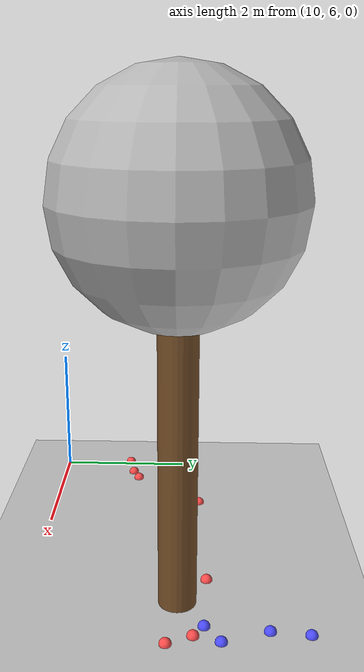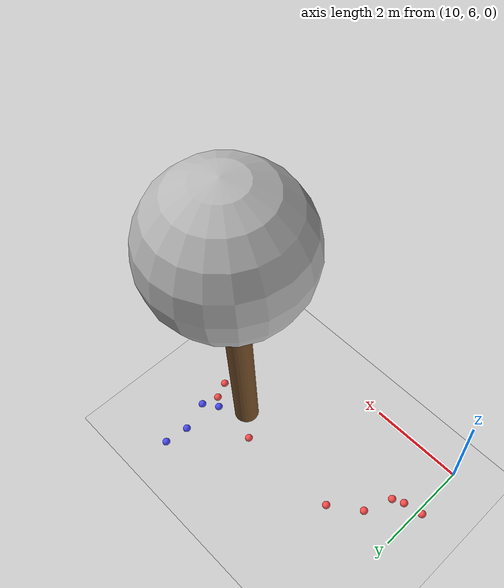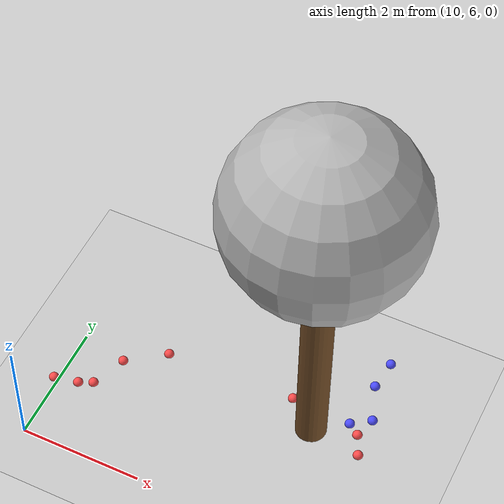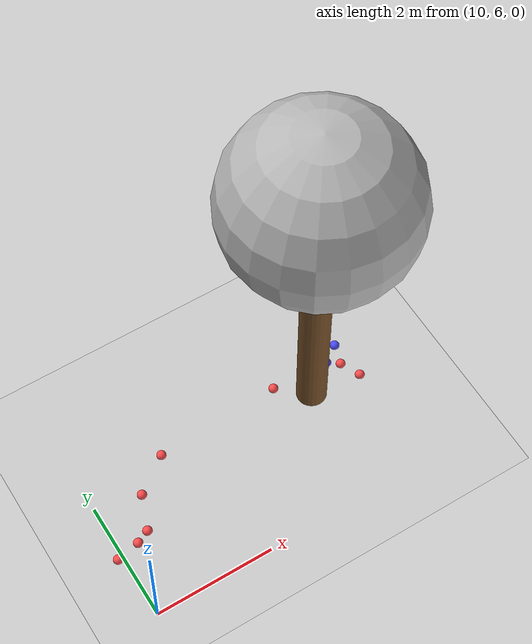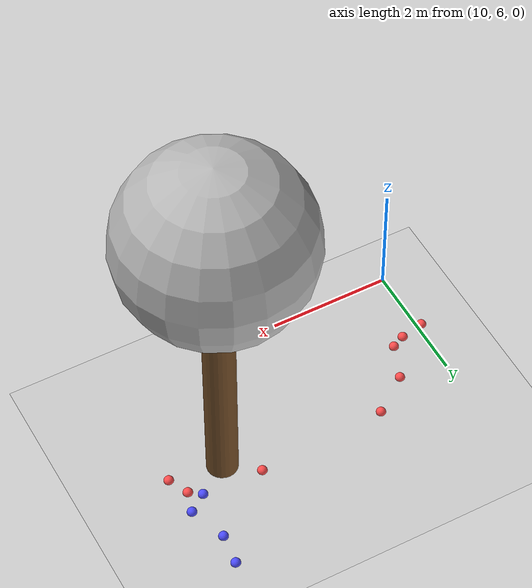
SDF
<sdf version="1.7">
 <world name="default">
  <model name="ground_plane">
   <static>1</static>
   <link name="link">
    <collision name="collision">
     <geometry><plane><normal>0 0 1</normal><size>100 100</size></plane></geometry>
     <surface>
      <contact><collide_bitmask>65535</collide_bitmask></contact>
      <friction><ode><mu>100</mu><mu2>50</mu2></ode></friction>
     </surface>
    </collision>
    <visual name="visual">
     <cast_shadows>0</cast_shadows>
     <geometry><plane><normal>0 0 1</normal><size>100 100</size></plane></geometry>
     <material>
      <script><uri>file://media/materials/scripts/gazebo.material</uri><name>Gazebo/Grey</name></script>
     </material>
    </visual>
   </link>
  </model>
  <model name="tree_simple_74">
   <static>1</static>
   <link name="link">
    <pose>0 0 0.1 0 -0 0</pose>
    <inertial>
     <mass>666</mass>
     <inertia>
      <ixx>0.0861167</ixx>
      <ixy>0</ixy>
      <ixz>0</ixz>
      <iyy>0.0861167</iyy>
      <iyz>0</iyz>
      <izz>0.0861167</izz>
     </inertia>
    </inertial>
    <collision name="collision_trunk">
     <pose>0 0 2 0 -0 0</pose>
     <geometry><cylinder><radius>0.25</radius><length>4</length></cylinder></geometry>
     <surface>
      <contact>
       <poissons_ratio>0.347</poissons_ratio>
       <elastic_modulus>8.8e+09</elastic_modulus>
       <ode><kp>100000</kp><kd>100</kd><max_vel>100</max_vel><min_depth>0.001</min_depth></ode>
      </contact>
      <friction>
       <torsional>
        <coefficient>1</coefficient>
        <use_patch_radius>0</use_patch_radius>
        <surface_radius>0.01</surface_radius>
       </torsional>
      </friction>
     </surface>
    </collision>
    <collision name="collision_treetop">
     <pose>0 0 5.2 0 -0 0</pose>
     <geometry><sphere><radius>1.5</radius></sphere></geometry>
     <surface>
      <contact>
       <poissons_ratio>0.347</poissons_ratio>
       <elastic_modulus>8.8e+09</elastic_modulus>
       <ode><kp>100000</kp><kd>100</kd><max_vel>100</max_vel><min_depth>0.001</min_depth></ode>
      </contact>
      <friction>
       <torsional>
        <coefficient>1</coefficient>
        <use_patch_radius>0</use_patch_radius>
        <surface_radius>0.01</surface_radius>
       </torsional>
      </friction>
     </surface>
    </collision>
    <visual name="trunk">
     <pose>0 0 2 0 -0 0</pose>
     <geometry><cylinder><radius>0.25</radius><length>4</length></cylinder></geometry>
     <material>
      <script>
       <uri>model://tree_simple/scripts</uri>
       <uri>model://tree_simple/materials/textures</uri>
       <name>TreeSimple/Trunk</name>
      </script>
     </material>
    </visual>
    <visual name="treetop">
     <pose>0 0 5.2 0 -0 0</pose>
     <geometry><sphere><radius>1.5</radius></sphere></geometry>
     <material>
      <script>
       <uri>model://tree_simple/scripts</uri>
       <uri>model://tree_simple/materials/textures</uri>
       <name>TreeSimple/Treetop</name>
      </script>
     </material>
    </visual>
   </link>
   <pose>14 8 -0.1 0 -0 0</pose>
  </model>
  <model name="seed_blue_149">
   <link name="link">
    <inertial>
     <mass>1</mass>
     <inertia><ixx>0.1</ixx><ixy>0</ixy><ixz>0</ixz><iyy>0.1</iyy><iyz>0</iyz><izz>0.1</izz></inertia>
    </inertial>
    <visual name="visual">
     <geometry><sphere><radius>0.08</radius></sphere></geometry>
     <material>
      <script><name>Gazebo/Grey</name><uri>file://media/materials/scripts/gazebo.material</uri></script>
      <shader type="pixel"><normal_map>__default__</normal_map></shader>
      <ambient>0.3 0.3 1 1</ambient>
      <diffuse>0.7 0.7 0.7 1</diffuse>
      <specular>0.01 0.01 0.01 1</specular>
      <emissive>0 0 0 1</emissive>
     </material>
    </visual>
    <collision name="collision">
     <geometry><sphere><radius>0.0005</radius></sphere></geometry>
     <surface>
      <friction>
       <ode><mu>1</mu><mu2>1</mu2><fdir1>0 0 0</fdir1><slip1>0</slip1><slip2>0</slip2></ode>
       <torsional>
        <coefficient>1</coefficient>
        <patch_radius>0</patch_radius>
        <surface_radius>0</surface_radius>
        <use_patch_radius>1</use_patch_radius>
        <ode><slip>0</slip></ode>
       </torsional>
      </friction>
      <bounce><restitution_coefficient>0</restitution_coefficient><threshold>1e+06</threshold></bounce>
      <contact>
       <collide_without_contact>0</collide_without_contact>
       <collide_without_contact_bitmask>1</collide_without_contact_bitmask>
       <collide_bitmask>1</collide_bitmask>
       <ode>
        <soft_cfm>0</soft_cfm>
        <soft_erp>0.2</soft_erp>
        <kp>1e+13</kp>
        <kd>1</kd>
        <max_vel>0.01</max_vel>
        <min_depth>0</min_depth>
       </ode>
       <bullet>
        <split_impulse>1</split_impulse>
        <split_impulse_penetration_threshold>-0.01</split_impulse_penetration_threshold>
        <soft_cfm>0</soft_cfm>
        <soft_erp>0.2</soft_erp>
        <kp>1e+13</kp>
        <kd>1</kd>
       </bullet>
      </contact>
     </surface>
    </collision>
   </link>
   <static>0</static>
   <pose>14.5107 8.34532 0.0005 0 -0 0</pose>
  </model>
  <model name="seed_blue_150">
   <link name="link">
    <inertial>
     <mass>1</mass>
     <inertia><ixx>0.1</ixx><ixy>0</ixy><ixz>0</ixz><iyy>0.1</iyy><iyz>0</iyz><izz>0.1</izz></inertia>
    </inertial>
    <visual name="visual">
     <geometry><sphere><radius>0.08</radius></sphere></geometry>
     <material>
      <script><name>Gazebo/Grey</name><uri>file://media/materials/scripts/gazebo.material</uri></script>
      <shader type="pixel"><normal_map>__default__</normal_map></shader>
      <ambient>0.3 0.3 1 1</ambient>
      <diffuse>0.7 0.7 0.7 1</diffuse>
      <specular>0.01 0.01 0.01 1</specular>
      <emissive>0 0 0 1</emissive>
     </material>
    </visual>
    <collision name="collision">
     <geometry><sphere><radius>0.0005</radius></sphere></geometry>
     <surface>
      <friction>
       <ode><mu>1</mu><mu2>1</mu2><fdir1>0 0 0</fdir1><slip1>0</slip1><slip2>0</slip2></ode>
       <torsional>
        <coefficient>1</coefficient>
        <patch_radius>0</patch_radius>
        <surface_radius>0</surface_radius>
        <use_patch_radius>1</use_patch_radius>
        <ode><slip>0</slip></ode>
       </torsional>
      </friction>
      <bounce><restitution_coefficient>0</restitution_coefficient><threshold>1e+06</threshold></bounce>
      <contact>
       <collide_without_contact>0</collide_without_contact>
       <collide_without_contact_bitmask>1</collide_without_contact_bitmask>
       <collide_bitmask>1</collide_bitmask>
       <ode>
        <soft_cfm>0</soft_cfm>
        <soft_erp>0.2</soft_erp>
        <kp>1e+13</kp>
        <kd>1</kd>
        <max_vel>0.01</max_vel>
        <min_depth>0</min_depth>
       </ode>
       <bullet>
        <split_impulse>1</split_impulse>
        <split_impulse_penetration_threshold>-0.01</split_impulse_penetration_threshold>
        <soft_cfm>0</soft_cfm>
        <soft_erp>0.2</soft_erp>
        <kp>1e+13</kp>
        <kd>1</kd>
       </bullet>
      </contact>
     </surface>
    </collision>
   </link>
   <static>0</static>
   <pose>14.8072 8.55366 0.0005 0 -0 0</pose>
  </model>
  <model name="seed_blue_151">
   <link name="link">
    <inertial>
     <mass>1</mass>
     <inertia><ixx>0.1</ixx><ixy>0</ixy><ixz>0</ixz><iyy>0.1</iyy><iyz>0</iyz><izz>0.1</izz></inertia>
    </inertial>
    <visual name="visual">
     <geometry><sphere><radius>0.08</radius></sphere></geometry>
     <material>
      <script><name>Gazebo/Grey</name><uri>file://media/materials/scripts/gazebo.material</uri></script>
      <shader type="pixel"><normal_map>__default__</normal_map></shader>
      <ambient>0.3 0.3 1 1</ambient>
      <diffuse>0.7 0.7 0.7 1</diffuse>
      <specular>0.01 0.01 0.01 1</specular>
      <emissive>0 0 0 1</emissive>
     </material>
    </visual>
    <collision name="collision">
     <geometry><sphere><radius>0.0005</radius></sphere></geometry>
     <surface>
      <friction>
       <ode><mu>1</mu><mu2>1</mu2><fdir1>0 0 0</fdir1><slip1>0</slip1><slip2>0</slip2></ode>
       <torsional>
        <coefficient>1</coefficient>
        <patch_radius>0</patch_radius>
        <surface_radius>0</surface_radius>
        <use_patch_radius>1</use_patch_radius>
        <ode><slip>0</slip></ode>
       </torsional>
      </friction>
      <bounce><restitution_coefficient>0</restitution_coefficient><threshold>1e+06</threshold></bounce>
      <contact>
       <collide_without_contact>0</collide_without_contact>
       <collide_without_contact_bitmask>1</collide_without_contact_bitmask>
       <collide_bitmask>1</collide_bitmask>
       <ode>
        <soft_cfm>0</soft_cfm>
        <soft_erp>0.2</soft_erp>
        <kp>1e+13</kp>
        <kd>1</kd>
        <max_vel>0.01</max_vel>
        <min_depth>0</min_depth>
       </ode>
       <bullet>
        <split_impulse>1</split_impulse>
        <split_impulse_penetration_threshold>-0.01</split_impulse_penetration_threshold>
        <soft_cfm>0</soft_cfm>
        <soft_erp>0.2</soft_erp>
        <kp>1e+13</kp>
        <kd>1</kd>
       </bullet>
      </contact>
     </surface>
    </collision>
   </link>
   <static>0</static>
   <pose>14.6504 9.66875 0.0005 0 -0 0</pose>
  </model>
  <model name="seed_blue_152">
   <link name="link">
    <inertial>
     <mass>1</mass>
     <inertia><ixx>0.1</ixx><ixy>0</ixy><ixz>0</ixz><iyy>0.1</iyy><iyz>0</iyz><izz>0.1</izz></inertia>
    </inertial>
    <visual name="visual">
     <geometry><sphere><radius>0.08</radius></sphere></geometry>
     <material>
      <script><name>Gazebo/Grey</name><uri>file://media/materials/scripts/gazebo.material</uri></script>
      <shader type="pixel"><normal_map>__default__</normal_map></shader>
      <ambient>0.3 0.3 1 1</ambient>
      <diffuse>0.7 0.7 0.7 1</diffuse>
      <specular>0.01 0.01 0.01 1</specular>
      <emissive>0 0 0 1</emissive>
     </material>
    </visual>
    <collision name="collision">
     <geometry><sphere><radius>0.0005</radius></sphere></geometry>
     <surface>
      <friction>
       <ode><mu>1</mu><mu2>1</mu2><fdir1>0 0 0</fdir1><slip1>0</slip1><slip2>0</slip2></ode>
       <torsional>
        <coefficient>1</coefficient>
        <patch_radius>0</patch_radius>
        <surface_radius>0</surface_radius>
        <use_patch_radius>1</use_patch_radius>
        <ode><slip>0</slip></ode>
       </torsional>
      </friction>
      <bounce><restitution_coefficient>0</restitution_coefficient><threshold>1e+06</threshold></bounce>
      <contact>
       <collide_without_contact>0</collide_without_contact>
       <collide_without_contact_bitmask>1</collide_without_contact_bitmask>
       <collide_bitmask>1</collide_bitmask>
       <ode>
        <soft_cfm>0</soft_cfm>
        <soft_erp>0.2</soft_erp>
        <kp>1e+13</kp>
        <kd>1</kd>
        <max_vel>0.01</max_vel>
        <min_depth>0</min_depth>
       </ode>
       <bullet>
        <split_impulse>1</split_impulse>
        <split_impulse_penetration_threshold>-0.01</split_impulse_penetration_threshold>
        <soft_cfm>0</soft_cfm>
        <soft_erp>0.2</soft_erp>
        <kp>1e+13</kp>
        <kd>1</kd>
       </bullet>
      </contact>
     </surface>
    </collision>
   </link>
   <static>0</static>
   <pose>14.5913 9.16592 0.0005 0 -0 0</pose>
  </model>
  <model name="seed_red_296">
   <link name="link">
    <inertial>
     <mass>1</mass>
     <inertia><ixx>0.1</ixx><ixy>0</ixy><ixz>0</ixz><iyy>0.1</iyy><iyz>0</iyz><izz>0.1</izz></inertia>
    </inertial>
    <visual name="visual">
     <geometry><sphere><radius>0.08</radius></sphere></geometry>
     <material>
      <script><name>Gazebo/Grey</name><uri>file://media/materials/scripts/gazebo.material</uri></script>
      <shader type="pixel"><normal_map>__default__</normal_map></shader>
      <ambient>1 0.3 0.3 1</ambient>
      <diffuse>0.7 0.7 0.7 1</diffuse>
      <specular>0.01 0.01 0.01 1</specular>
      <emissive>0 0 0 1</emissive>
     </material>
    </visual>
    <collision name="collision">
     <geometry><sphere><radius>0.0005</radius></sphere></geometry>
     <surface>
      <friction>
       <ode><mu>1</mu><mu2>1</mu2><fdir1>0 0 0</fdir1><slip1>0</slip1><slip2>0</slip2></ode>
       <torsional>
        <coefficient>1</coefficient>
        <patch_radius>0</patch_radius>
        <surface_radius>0</surface_radius>
        <use_patch_radius>1</use_patch_radius>
        <ode><slip>0</slip></ode>
       </torsional>
      </friction>
      <bounce><restitution_coefficient>0</restitution_coefficient><threshold>1e+06</threshold></bounce>
      <contact>
       <collide_without_contact>0</collide_without_contact>
       <collide_without_contact_bitmask>1</collide_without_contact_bitmask>
       <collide_bitmask>1</collide_bitmask>
       <ode>
        <soft_cfm>0</soft_cfm>
        <soft_erp>0.2</soft_erp>
        <kp>1e+13</kp>
        <kd>1</kd>
        <max_vel>0.01</max_vel>
        <min_depth>0</min_depth>
       </ode>
       <bullet>
        <split_impulse>1</split_impulse>
        <split_impulse_penetration_threshold>-0.01</split_impulse_penetration_threshold>
        <soft_cfm>0</soft_cfm>
        <soft_erp>0.2</soft_erp>
        <kp>1e+13</kp>
        <kd>1</kd>
       </bullet>
      </contact>
     </surface>
    </collision>
   </link>
   <static>0</static>
   <pose>14.8555 7.87203 0.0005 0 -0 0</pose>
  </model>
  <model name="seed_red_298">
   <link name="link">
    <inertial>
     <mass>1</mass>
     <inertia><ixx>0.1</ixx><ixy>0</ixy><ixz>0</ixz><iyy>0.1</iyy><iyz>0</iyz><izz>0.1</izz></inertia>
    </inertial>
    <visual name="visual">
     <geometry><sphere><radius>0.08</radius></sphere></geometry>
     <material>
      <script><name>Gazebo/Grey</name><uri>file://media/materials/scripts/gazebo.material</uri></script>
      <shader type="pixel"><normal_map>__default__</normal_map></shader>
      <ambient>1 0.3 0.3 1</ambient>
      <diffuse>0.7 0.7 0.7 1</diffuse>
      <specular>0.01 0.01 0.01 1</specular>
      <emissive>0 0 0 1</emissive>
     </material>
    </visual>
    <collision name="collision">
     <geometry><sphere><radius>0.0005</radius></sphere></geometry>
     <surface>
      <friction>
       <ode><mu>1</mu><mu2>1</mu2><fdir1>0 0 0</fdir1><slip1>0</slip1><slip2>0</slip2></ode>
       <torsional>
        <coefficient>1</coefficient>
        <patch_radius>0</patch_radius>
        <surface_radius>0</surface_radius>
        <use_patch_radius>1</use_patch_radius>
        <ode><slip>0</slip></ode>
       </torsional>
      </friction>
      <bounce><restitution_coefficient>0</restitution_coefficient><threshold>1e+06</threshold></bounce>
      <contact>
       <collide_without_contact>0</collide_without_contact>
       <collide_without_contact_bitmask>1</collide_without_contact_bitmask>
       <collide_bitmask>1</collide_bitmask>
       <ode>
        <soft_cfm>0</soft_cfm>
        <soft_erp>0.2</soft_erp>
        <kp>1e+13</kp>
        <kd>1</kd>
        <max_vel>0.01</max_vel>
        <min_depth>0</min_depth>
       </ode>
       <bullet>
        <split_impulse>1</split_impulse>
        <split_impulse_penetration_threshold>-0.01</split_impulse_penetration_threshold>
        <soft_cfm>0</soft_cfm>
        <soft_erp>0.2</soft_erp>
        <kp>1e+13</kp>
        <kd>1</kd>
       </bullet>
      </contact>
     </surface>
    </collision>
   </link>
   <static>0</static>
   <pose>14.7005 8.20748 0.0005 0 -0 0</pose>
  </model>
  <model name="seed_red_299">
   <link name="link">
    <inertial>
     <mass>1</mass>
     <inertia><ixx>0.1</ixx><ixy>0</ixy><ixz>0</ixz><iyy>0.1</iyy><iyz>0</iyz><izz>0.1</izz></inertia>
    </inertial>
    <visual name="visual">
     <geometry><sphere><radius>0.08</radius></sphere></geometry>
     <material>
      <script><name>Gazebo/Grey</name><uri>file://media/materials/scripts/gazebo.material</uri></script>
      <shader type="pixel"><normal_map>__default__</normal_map></shader>
      <ambient>1 0.3 0.3 1</ambient>
      <diffuse>0.7 0.7 0.7 1</diffuse>
      <specular>0.01 0.01 0.01 1</specular>
      <emissive>0 0 0 1</emissive>
     </material>
    </visual>
    <collision name="collision">
     <geometry><sphere><radius>0.0005</radius></sphere></geometry>
     <surface>
      <friction>
       <ode><mu>1</mu><mu2>1</mu2><fdir1>0 0 0</fdir1><slip1>0</slip1><slip2>0</slip2></ode>
       <torsional>
        <coefficient>1</coefficient>
        <patch_radius>0</patch_radius>
        <surface_radius>0</surface_radius>
        <use_patch_radius>1</use_patch_radius>
        <ode><slip>0</slip></ode>
       </torsional>
      </friction>
      <bounce><restitution_coefficient>0</restitution_coefficient><threshold>1e+06</threshold></bounce>
      <contact>
       <collide_without_contact>0</collide_without_contact>
       <collide_without_contact_bitmask>1</collide_without_contact_bitmask>
       <collide_bitmask>1</collide_bitmask>
       <ode>
        <soft_cfm>0</soft_cfm>
        <soft_erp>0.2</soft_erp>
        <kp>1e+13</kp>
        <kd>1</kd>
        <max_vel>0.01</max_vel>
        <min_depth>0</min_depth>
       </ode>
       <bullet>
        <split_impulse>1</split_impulse>
        <split_impulse_penetration_threshold>-0.01</split_impulse_penetration_threshold>
        <soft_cfm>0</soft_cfm>
        <soft_erp>0.2</soft_erp>
        <kp>1e+13</kp>
        <kd>1</kd>
       </bullet>
      </contact>
     </surface>
    </collision>
   </link>
   <static>0</static>
   <pose>13.5128 8.38704 0.0005 0 -0 0</pose>
  </model>
  <model name="seed_red_309">
   <link name="link">
    <inertial>
     <mass>1</mass>
     <inertia><ixx>0.1</ixx><ixy>0</ixy><ixz>0</ixz><iyy>0.1</iyy><iyz>0</iyz><izz>0.1</izz></inertia>
    </inertial>
    <visual name="visual">
     <geometry><sphere><radius>0.08</radius></sphere></geometry>
     <material>
      <script><name>Gazebo/Grey</name><uri>file://media/materials/scripts/gazebo.material</uri></script>
      <shader type="pixel"><normal_map>__default__</normal_map></shader>
      <ambient>1 0.3 0.3 1</ambient>
      <diffuse>0.7 0.7 0.7 1</diffuse>
      <specular>0.01 0.01 0.01 1</specular>
      <emissive>0 0 0 1</emissive>
     </material>
    </visual>
    <collision name="collision">
     <geometry><sphere><radius>0.0005</radius></sphere></geometry>
     <surface>
      <friction>
       <ode><mu>1</mu><mu2>1</mu2><fdir1>0 0 0</fdir1><slip1>0</slip1><slip2>0</slip2></ode>
       <torsional>
        <coefficient>1</coefficient>
        <patch_radius>0</patch_radius>
        <surface_radius>0</surface_radius>
        <use_patch_radius>1</use_patch_radius>
        <ode><slip>0</slip></ode>
       </torsional>
      </friction>
      <bounce><restitution_coefficient>0</restitution_coefficient><threshold>1e+06</threshold></bounce>
      <contact>
       <collide_without_contact>0</collide_without_contact>
       <collide_without_contact_bitmask>1</collide_without_contact_bitmask>
       <collide_bitmask>1</collide_bitmask>
       <ode>
        <soft_cfm>0</soft_cfm>
        <soft_erp>0.2</soft_erp>
        <kp>1e+13</kp>
        <kd>1</kd>
        <max_vel>0.01</max_vel>
        <min_depth>0</min_depth>
       </ode>
       <bullet>
        <split_impulse>1</split_impulse>
        <split_impulse_penetration_threshold>-0.01</split_impulse_penetration_threshold>
        <soft_cfm>0</soft_cfm>
        <soft_erp>0.2</soft_erp>
        <kp>1e+13</kp>
        <kd>1</kd>
       </bullet>
      </contact>
     </surface>
    </collision>
   </link>
   <static>0</static>
   <pose>9.91665 7.08402 0.0005 0 -0 0</pose>
  </model>
  <model name="seed_red_310">
   <link name="link">
    <inertial>
     <mass>1</mass>
     <inertia><ixx>0.1</ixx><ixy>0</ixy><ixz>0</ixz><iyy>0.1</iyy><iyz>0</iyz><izz>0.1</izz></inertia>
    </inertial>
    <visual name="visual">
     <geometry><sphere><radius>0.08</radius></sphere></geometry>
     <material>
      <script><name>Gazebo/Grey</name><uri>file://media/materials/scripts/gazebo.material</uri></script>
      <shader type="pixel"><normal_map>__default__</normal_map></shader>
      <ambient>1 0.3 0.3 1</ambient>
      <diffuse>0.7 0.7 0.7 1</diffuse>
      <specular>0.01 0.01 0.01 1</specular>
      <emissive>0 0 0 1</emissive>
     </material>
    </visual>
    <collision name="collision">
     <geometry><sphere><radius>0.0005</radius></sphere></geometry>
     <surface>
      <friction>
       <ode><mu>1</mu><mu2>1</mu2><fdir1>0 0 0</fdir1><slip1>0</slip1><slip2>0</slip2></ode>
       <torsional>
        <coefficient>1</coefficient>
        <patch_radius>0</patch_radius>
        <surface_radius>0</surface_radius>
        <use_patch_radius>1</use_patch_radius>
        <ode><slip>0</slip></ode>
       </torsional>
      </friction>
      <bounce><restitution_coefficient>0</restitution_coefficient><threshold>1e+06</threshold></bounce>
      <contact>
       <collide_without_contact>0</collide_without_contact>
       <collide_without_contact_bitmask>1</collide_without_contact_bitmask>
       <collide_bitmask>1</collide_bitmask>
       <ode>
        <soft_cfm>0</soft_cfm>
        <soft_erp>0.2</soft_erp>
        <kp>1e+13</kp>
        <kd>1</kd>
        <max_vel>0.01</max_vel>
        <min_depth>0</min_depth>
       </ode>
       <bullet>
        <split_impulse>1</split_impulse>
        <split_impulse_penetration_threshold>-0.01</split_impulse_penetration_threshold>
        <soft_cfm>0</soft_cfm>
        <soft_erp>0.2</soft_erp>
        <kp>1e+13</kp>
        <kd>1</kd>
       </bullet>
      </contact>
     </surface>
    </collision>
   </link>
   <static>0</static>
   <pose>11.3616 8.28848 0.0005 0 -0 0</pose>
  </model>
  <model name="seed_red_311">
   <link name="link">
    <inertial>
     <mass>1</mass>
     <inertia><ixx>0.1</ixx><ixy>0</ixy><ixz>0</ixz><iyy>0.1</iyy><iyz>0</iyz><izz>0.1</izz></inertia>
    </inertial>
    <visual name="visual">
     <geometry><sphere><radius>0.08</radius></sphere></geometry>
     <material>
      <script><name>Gazebo/Grey</name><uri>file://media/materials/scripts/gazebo.material</uri></script>
      <shader type="pixel"><normal_map>__default__</normal_map></shader>
      <ambient>1 0.3 0.3 1</ambient>
      <diffuse>0.7 0.7 0.7 1</diffuse>
      <specular>0.01 0.01 0.01 1</specular>
      <emissive>0 0 0 1</emissive>
     </material>
    </visual>
    <collision name="collision">
     <geometry><sphere><radius>0.0005</radius></sphere></geometry>
     <surface>
      <friction>
       <ode><mu>1</mu><mu2>1</mu2><fdir1>0 0 0</fdir1><slip1>0</slip1><slip2>0</slip2></ode>
       <torsional>
        <coefficient>1</coefficient>
        <patch_radius>0</patch_radius>
        <surface_radius>0</surface_radius>
        <use_patch_radius>1</use_patch_radius>
        <ode><slip>0</slip></ode>
       </torsional>
      </friction>
      <bounce><restitution_coefficient>0</restitution_coefficient><threshold>1e+06</threshold></bounce>
      <contact>
       <collide_without_contact>0</collide_without_contact>
       <collide_without_contact_bitmask>1</collide_without_contact_bitmask>
       <collide_bitmask>1</collide_bitmask>
       <ode>
        <soft_cfm>0</soft_cfm>
        <soft_erp>0.2</soft_erp>
        <kp>1e+13</kp>
        <kd>1</kd>
        <max_vel>0.01</max_vel>
        <min_depth>0</min_depth>
       </ode>
       <bullet>
        <split_impulse>1</split_impulse>
        <split_impulse_penetration_threshold>-0.01</split_impulse_penetration_threshold>
        <soft_cfm>0</soft_cfm>
        <soft_erp>0.2</soft_erp>
        <kp>1e+13</kp>
        <kd>1</kd>
       </bullet>
      </contact>
     </surface>
    </collision>
   </link>
   <static>0</static>
   <pose>10.5325 7.26804 0.0005 0 -0 0</pose>
  </model>
  <model name="seed_red_312">
   <link name="link">
    <inertial>
     <mass>1</mass>
     <inertia><ixx>0.1</ixx><ixy>0</ixy><ixz>0</ixz><iyy>0.1</iyy><iyz>0</iyz><izz>0.1</izz></inertia>
    </inertial>
    <visual name="visual">
     <geometry><sphere><radius>0.08</radius></sphere></geometry>
     <material>
      <script><name>Gazebo/Grey</name><uri>file://media/materials/scripts/gazebo.material</uri></script>
      <shader type="pixel"><normal_map>__default__</normal_map></shader>
      <ambient>1 0.3 0.3 1</ambient>
      <diffuse>0.7 0.7 0.7 1</diffuse>
      <specular>0.01 0.01 0.01 1</specular>
      <emissive>0 0 0 1</emissive>
     </material>
    </visual>
    <collision name="collision">
     <geometry><sphere><radius>0.0005</radius></sphere></geometry>
     <surface>
      <friction>
       <ode><mu>1</mu><mu2>1</mu2><fdir1>0 0 0</fdir1><slip1>0</slip1><slip2>0</slip2></ode>
       <torsional>
        <coefficient>1</coefficient>
        <patch_radius>0</patch_radius>
        <surface_radius>0</surface_radius>
        <use_patch_radius>1</use_patch_radius>
        <ode><slip>0</slip></ode>
       </torsional>
      </friction>
      <bounce><restitution_coefficient>0</restitution_coefficient><threshold>1e+06</threshold></bounce>
      <contact>
       <collide_without_contact>0</collide_without_contact>
       <collide_without_contact_bitmask>1</collide_without_contact_bitmask>
       <collide_bitmask>1</collide_bitmask>
       <ode>
        <soft_cfm>0</soft_cfm>
        <soft_erp>0.2</soft_erp>
        <kp>1e+13</kp>
        <kd>1</kd>
        <max_vel>0.01</max_vel>
        <min_depth>0</min_depth>
       </ode>
       <bullet>
        <split_impulse>1</split_impulse>
        <split_impulse_penetration_threshold>-0.01</split_impulse_penetration_threshold>
        <soft_cfm>0</soft_cfm>
        <soft_erp>0.2</soft_erp>
        <kp>1e+13</kp>
        <kd>1</kd>
       </bullet>
      </contact>
     </surface>
    </collision>
   </link>
   <static>0</static>
   <pose>10.7597 7.8455 0.0005 0 -0 0</pose>
  </model>
  <model name="seed_red_315">
   <link name="link">
    <inertial>
     <mass>1</mass>
     <inertia><ixx>0.1</ixx><ixy>0</ixy><ixz>0</ixz><iyy>0.1</iyy><iyz>0</iyz><izz>0.1</izz></inertia>
    </inertial>
    <visual name="visual">
     <geometry><sphere><radius>0.08</radius></sphere></geometry>
     <material>
      <script><name>Gazebo/Grey</name><uri>file://media/materials/scripts/gazebo.material</uri></script>
      <shader type="pixel"><normal_map>__default__</normal_map></shader>
      <ambient>1 0.3 0.3 1</ambient>
      <diffuse>0.7 0.7 0.7 1</diffuse>
      <specular>0.01 0.01 0.01 1</specular>
      <emissive>0 0 0 1</emissive>
     </material>
    </visual>
    <collision name="collision">
     <geometry><sphere><radius>0.0005</radius></sphere></geometry>
     <surface>
      <friction>
       <ode><mu>1</mu><mu2>1</mu2><fdir1>0 0 0</fdir1><slip1>0</slip1><slip2>0</slip2></ode>
       <torsional>
        <coefficient>1</coefficient>
        <patch_radius>0</patch_radius>
        <surface_radius>0</surface_radius>
        <use_patch_radius>1</use_patch_radius>
        <ode><slip>0</slip></ode>
       </torsional>
      </friction>
      <bounce><restitution_coefficient>0</restitution_coefficient><threshold>1e+06</threshold></bounce>
      <contact>
       <collide_without_contact>0</collide_without_contact>
       <collide_without_contact_bitmask>1</collide_without_contact_bitmask>
       <collide_bitmask>1</collide_bitmask>
       <ode>
        <soft_cfm>0</soft_cfm>
        <soft_erp>0.2</soft_erp>
        <kp>1e+13</kp>
        <kd>1</kd>
        <max_vel>0.01</max_vel>
        <min_depth>0</min_depth>
       </ode>
       <bullet>
        <split_impulse>1</split_impulse>
        <split_impulse_penetration_threshold>-0.01</split_impulse_penetration_threshold>
        <soft_cfm>0</soft_cfm>
        <soft_erp>0.2</soft_erp>
        <kp>1e+13</kp>
        <kd>1</kd>
       </bullet>
      </contact>
     </surface>
    </collision>
   </link>
   <static>0</static>
   <pose>10.3111 7.1645 0.0005 0 -0 0</pose>
  </model>
 </world>
</sdf>
